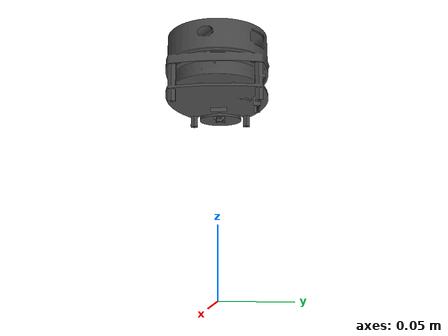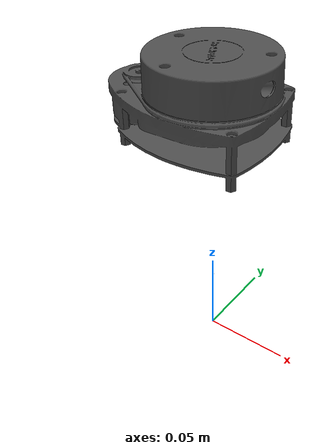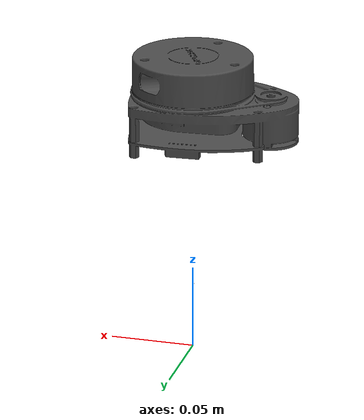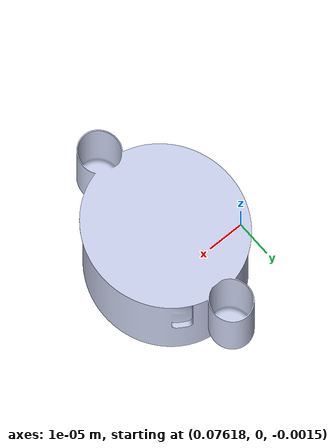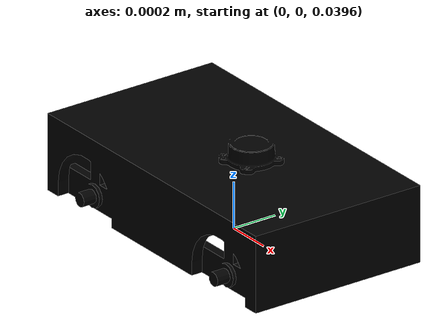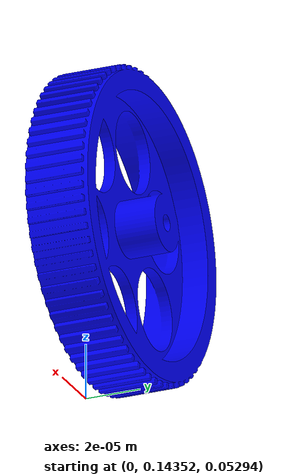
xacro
<?xml version="1.0"?>
<robot name="robot" xmlns:xacro="http://ros.org/wiki/xacro">

    <!-- argument for checking if the gazebo is ignition(which means to check if ros2 humble or jazzy)-->
    <xacro:arg name="is_ignition" default="true"/>

    <!-- including gazebo parameters from file-->
    <xacro:include filename="$(find robot_description)/urdf/robot_gazebo.xacro" />

    <!-- including ros2_control parametersfrom file-->
    <xacro:include filename="$(find robot_description)/urdf/robot_ros2_control.xacro" />

    <material name="blue">
        <color rgba="0 0 1 1"/>
    </material>

    <material name="black">
        <color rgba="0 0 0 1"/>
    </material>

    <material name="silver">
        <color rgba="0.79 0.82 0.93 1"/>
    </material>

    <material name="dark_grey">
        <color rgba="0.3 0.3 0.3 1"/>
    </material>

    <material name="amber_gold">
        <color rgba="1.0 0.75 0.0 1.0"/>
    </material>

    <link name="base_footprint" />

    <link name="base_link">
        <inertial>
            <origin xyz="0.0065 0.002607 0.020274" rpy="0 0 0"/>
            <mass value="0.947792"/>
            <inertia ixx="3.036"    ixy="-0.4767"  ixz="-0.511"
                                    iyy="1.659"    iyz="-1.036"
                                                    izz="3.374"/>
        </inertial>

        <visual>
            <geometry>
                <mesh filename="package://robot_description/meshes/base_link.stl" scale="0.001 0.001 0.001"/>
            </geometry>
            <origin xyz="0 0 0.0015" rpy="0 0 1.57"/>
            <material name="black"/>

        </visual>

        <collision>
            <geometry>
                <mesh filename="package://robot_description/meshes/base_link.stl" scale="0.001 0.001 0.001"/>
            </geometry>
            <origin xyz="0 0 0.0015" rpy="0 0 1.57"/>
        </collision>
    </link>

    <link name="laser">
        <inertial>
            <origin xyz="0.0000267575 0.0000021499 0.0000258840" rpy="0 0 0"/>
            <mass value="0.1700"/>
            <inertia ixx="7.403494e-05"  ixy="5.337393e-06"  ixz="1.511932e-05"
                                            iyy="1.426408e-04"  iyz="1.752534e-06"
                                                                izz="1.672852e-04"/>
        </inertial>

        <visual>
            <geometry>
                <mesh filename="package://robot_description/meshes/new_laser_link.stl"/>
            </geometry>
            <origin xyz="0 0 0" rpy="0 0 0"/>
            <material name="dark_grey"/>
        </visual>

        <collision>
            <geometry>
                <mesh filename="package://robot_description/meshes/new_laser_link.stl"/>
            </geometry>
            <origin xyz="0 0 0" rpy="0 0 0"/>
        </collision>
    </link>

    <link name="wheel_right_link">
        <inertial>
        <origin xyz="6.671e-12 -1.094e-11 0.012102" rpy="0 0 0"/>
        <mass value="0.09205"/>
        <inertia ixx="9.3607e-05"  ixy="-4.428e-15"  ixz="6.941e-16"
                                    iyy="9.3607e-05"  iyz="-1.133e-15"
                                                        izz="1.802e-04"/>
        </inertial>

        <visual>
            <geometry>
                <mesh filename="package://robot_description/meshes/wheel_right_link.stl" scale="0.001 0.001 0.001"/>
            </geometry>
            <origin xyz="0 0 0" rpy="-1.57 0 0"/>
            <material name="blue" />
        </visual>

        <collision>
            <geometry>
                <mesh filename="package://robot_description/meshes/wheel_right_link.stl" scale="0.001 0.001 0.001"/>
            </geometry>
            <origin xyz="0 0 0" rpy="-1.57 0 0"/>
            <material name="blue" />
        </collision>
    </link>

    <link name="wheel_left_link">
        <inertial>
        <origin xyz="6.671e-12 -1.094e-11 0.012102" rpy="0 0 0"/>
        <mass value="0.09205"/>
        <inertia ixx="9.3607e-05"  ixy="-4.428e-15"  ixz="6.941e-16"
                                    iyy="9.3607e-05"  iyz="-1.133e-15"
                                                        izz="1.802e-04"/>
        </inertial>

        <visual>
            <geometry>
                <mesh filename="package://robot_description/meshes/wheel_left_link.stl" scale="0.001 0.001 0.001"/>
            </geometry>
            <origin xyz="0 0 0" rpy="1.57 0 0"/>
            <material name="blue" />
        </visual>

        <collision>
            <geometry>
                <mesh filename="package://robot_description/meshes/wheel_left_link.stl" scale="0.001 0.001 0.001"/>
            </geometry>
            <origin xyz="0 0 0" rpy="1.57 0 0"/>
            <material name="blue" />
        </collision>
    </link>

    <link name="caster_rear_link">
        <inertial>
        <origin xyz="0.000348 -0.003895 0.018625" rpy="0 0 0"/>
        <mass value="0.030003"/>
        <inertia ixx="5.032352e-06"  ixy="7.6e-10"    ixz="-5.91e-10"
                                        iyy="5.178243e-06"  iyz="-2.92e-10"
                                                            izz="5.249228e-06"/>
        </inertial>

        <visual>
            <geometry>
                <mesh filename="package://robot_description/meshes/caster_rear_link.stl" scale="0.001 0.001  0.001"/>
            </geometry>
            <origin xyz="0 0 0" rpy="0 0 1.57"/>
            <material name="silver"/>
        </visual>

        <collision>
            <geometry>
                <mesh filename="package://robot_description/meshes/caster_rear_link.stl" scale="0.001 0.001  0.001"/>
            </geometry>
            <origin xyz="0 0 0" rpy="0 0 1.57"/>
        </collision>
    </link>

    <link name="caster_front_link">
        <inertial>
        <origin xyz="0.000348 -0.003895 0.018625" rpy="0 0 0"/>
        <mass value="0.030003"/>
        <inertia ixx="5.032352e-06"  ixy="7.6e-10"    ixz="-5.91e-10"
                                        iyy="5.178243e-06"  iyz="-2.92e-10"
                                                            izz="5.249228e-06"/>
        </inertial>

        <visual>
            <geometry>
                <mesh filename="package://robot_description/meshes/caster_front_link.stl" scale="0.001 0.001  0.001"/>
            </geometry>
            <origin xyz="0 0 0" rpy="0 0 1.57"/>
            <material name="silver"/>
        </visual>

        <collision>
            <geometry>
                <mesh filename="package://robot_description/meshes/caster_front_link.stl" scale="0.001 0.001  0.001"/>
            </geometry>
            <origin xyz="0 0 0" rpy="0 0 1.57"/>
        </collision>
    </link>

    <joint name="base_joint" type="fixed">
        <parent link="base_footprint"/>
        <child link="base_link"/>
        <origin xyz="0 0 0.038" rpy="0 0 0"/>
    </joint>

    <joint name="laser_joint" type="fixed">
        <origin xyz="0 0 0.131" rpy="0 0 0" /> <!-- z= 0.042(from physical unit) + 0.088(from fusion final assembly without wheels) + 0.001(accounting for plate thickness)-->
        <parent link="base_link" />
        <child link="laser" />
    </joint>

    <joint name="wheel_right_joint" type="continuous">
        <origin xyz="0 -0.14355 0.015" rpy="0 0 0" />
        <parent link="base_link" />
        <child link="wheel_right_link" />
        <axis xyz="0 1 0" />
    </joint>

    <joint name="wheel_left_joint" type="continuous">
        <origin xyz="0 0.14355 0.015" rpy="0 0 0" /> <!-- z value = height of protruded part of wheel(long) from fusion assembly-->
        <!-- y value = (-0.12855 - 0.015) where 0.015 is height of protruded part of wheel(long) from fusion assembly and the 0.12855 is radius of base plate + approximation of around 0.5inches-->
        <parent link="base_link" />
        <child link="wheel_left_link" />
        <axis xyz="0 1 0" />
    </joint>

    <joint name="caster_rear_joint" type="fixed">
        <origin xyz="-0.0762 0 -0.0395011" rpy="0 0 0" /> <!-- x value = 3 inches   y value = from fusion caster height-->
        <parent link="base_link" />
        <child link="caster_rear_link" />
    </joint>

    <joint name="caster_front_joint" type="fixed">
        <origin xyz="0.0762 0 -0.0395011" rpy="0 0 0" /> <!-- x value = 3 inches   y value = from fusion caster height-->
        <parent link="base_link" />
        <child link="caster_front_link" />
    </joint>

</robot>
